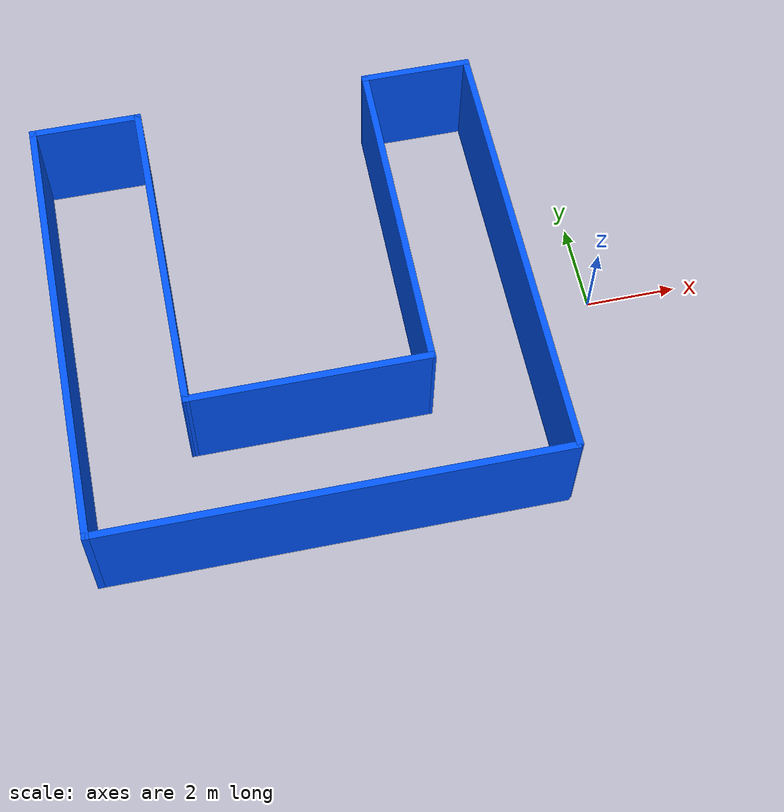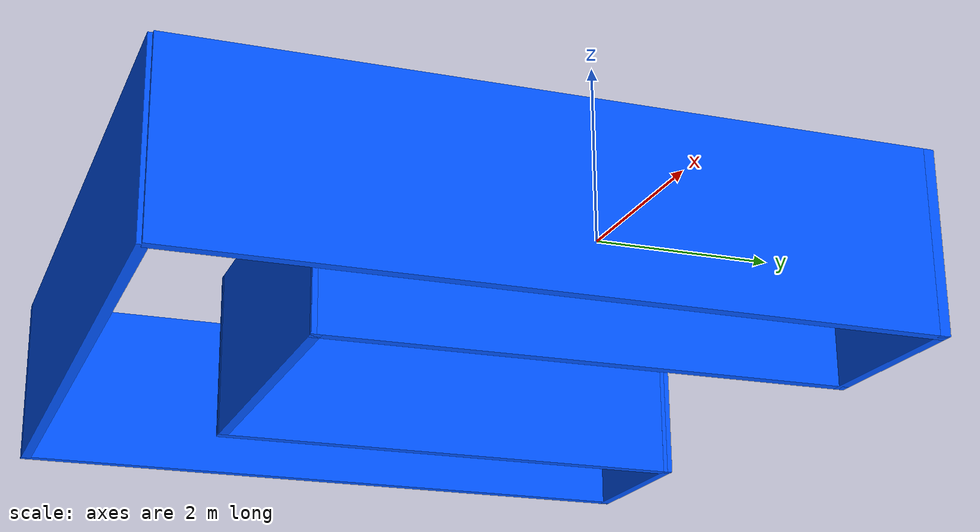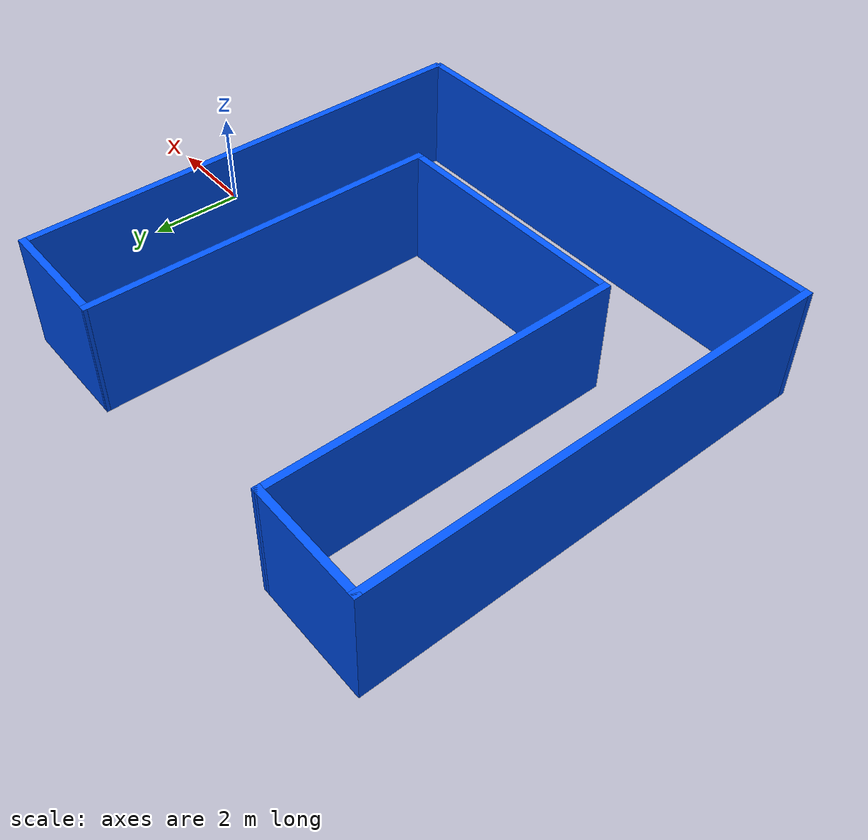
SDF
<?xml version='1.0'?>
<sdf version='1.6'>
  <model name='wall_world'>
    <pose frame=''>-6.63799 0.445283 0 0 -0 0</pose>
    <link name='Wall_0'>
      <collision name='Wall_0_Collision'>
        <geometry>
          <box>
            <size>10 0.15 2.5</size>
          </box>
        </geometry>
        <pose frame=''>0 0 1.25 0 -0 0</pose>
      </collision>
      <visual name='Wall_0_Visual'>
        <pose frame=''>0 0 1.25 0 -0 0</pose>
        <geometry>
          <box>
            <size>10 0.15 2.5</size>
          </box>
        </geometry>
        <material>
          <script>
            <uri>file://media/materials/scripts/gazebo.material</uri>
            <name>Gazebo/Grey</name>
          </script>
          <ambient>0 0.333333 1 1</ambient>
        </material>
        <meta>
          <layer>0</layer>
        </meta>
      </visual>
      <pose frame=''>-4.95201 -0.030283 0 0 -0 1.5708</pose>
    </link>
    <link name='Wall_10'>
      <collision name='Wall_10_Collision'>
        <geometry>
          <box>
            <size>7.47758 0.15 2.5</size>
          </box>
        </geometry>
        <pose frame=''>0 0 1.25 0 -0 0</pose>
      </collision>
      <visual name='Wall_10_Visual'>
        <pose frame=''>0 0 1.25 0 -0 0</pose>
        <geometry>
          <box>
            <size>7.47758 0.15 2.5</size>
          </box>
        </geometry>
        <material>
          <script>
            <uri>file://media/materials/scripts/gazebo.material</uri>
            <name>Gazebo/Grey</name>
          </script>
          <ambient>0 0.333333 1 1</ambient>
        </material>
        <meta>
          <layer>0</layer>
        </meta>
      </visual>
      <pose frame=''>2.55601 1.29085 0 0 -0 1.55824</pose>
    </link>
    <link name='Wall_11'>
      <collision name='Wall_11_Collision'>
        <geometry>
          <box>
            <size>2.5 0.15 2.5</size>
          </box>
        </geometry>
        <pose frame=''>0 0 1.25 0 -0 0</pose>
      </collision>
      <visual name='Wall_11_Visual'>
        <pose frame=''>0 0 1.25 0 -0 0</pose>
        <geometry>
          <box>
            <size>2.5 0.15 2.5</size>
          </box>
        </geometry>
        <material>
          <script>
            <uri>file://media/materials/scripts/gazebo.material</uri>
            <name>Gazebo/Grey</name>
          </script>
          <ambient>0 0.333333 1 1</ambient>
        </material>
        <meta>
          <layer>0</layer>
        </meta>
      </visual>
      <pose frame=''>3.77701 4.95435 0 0 -0 0</pose>
    </link>
    <link name='Wall_3'>
      <collision name='Wall_3_Collision'>
        <geometry>
          <box>
            <size>10 0.15 2.5</size>
          </box>
        </geometry>
        <pose frame=''>0 0 1.25 0 -0 0</pose>
      </collision>
      <visual name='Wall_3_Visual'>
        <pose frame=''>0 0 1.25 0 -0 0</pose>
        <geometry>
          <box>
            <size>10 0.15 2.5</size>
          </box>
        </geometry>
        <material>
          <script>
            <uri>file://media/materials/scripts/gazebo.material</uri>
            <name>Gazebo/Grey</name>
          </script>
          <ambient>0 0.333333 1 1</ambient>
        </material>
        <meta>
          <layer>0</layer>
        </meta>
      </visual>
      <pose frame=''>-0.02701 -4.95528 0 0 -0 3.14159</pose>
    </link>
    <link name='Wall_5'>
      <collision name='Wall_5_Collision'>
        <geometry>
          <box>
            <size>10 0.15 2.5</size>
          </box>
        </geometry>
        <pose frame=''>0 0 1.25 0 -0 0</pose>
      </collision>
      <visual name='Wall_5_Visual'>
        <pose frame=''>0 0 1.25 0 -0 0</pose>
        <geometry>
          <box>
            <size>10 0.15 2.5</size>
          </box>
        </geometry>
        <material>
          <script>
            <uri>file://media/materials/scripts/gazebo.material</uri>
            <name>Gazebo/Grey</name>
          </script>
          <ambient>0 0.333333 1 1</ambient>
        </material>
        <meta>
          <layer>0</layer>
        </meta>
      </visual>
      <pose frame=''>4.95201 0.029347 0 0 -0 1.5708</pose>
    </link>
    <link name='Wall_7'>
      <collision name='Wall_7_Collision'>
        <geometry>
          <box>
            <size>2.5 0.15 2.5</size>
          </box>
        </geometry>
        <pose frame=''>0 0 1.25 0 -0 0</pose>
      </collision>
      <visual name='Wall_7_Visual'>
        <pose frame=''>0 0 1.25 0 -0 0</pose>
        <geometry>
          <box>
            <size>2.5 0.15 2.5</size>
          </box>
        </geometry>
        <material>
          <script>
            <uri>file://media/materials/scripts/gazebo.material</uri>
            <name>Gazebo/Grey</name>
          </script>
          <ambient>0 0.333333 1 1</ambient>
        </material>
        <meta>
          <layer>0</layer>
        </meta>
      </visual>
      <pose frame=''>-3.77701 4.89472 0 0 -0 0</pose>
    </link>
    <link name='Wall_8'>
      <collision name='Wall_8_Collision'>
        <geometry>
          <box>
            <size>7.41738 0.15 2.5</size>
          </box>
        </geometry>
        <pose frame=''>0 0 1.25 0 -0 0</pose>
      </collision>
      <visual name='Wall_8_Visual'>
        <pose frame=''>0 0 1.25 0 -0 0</pose>
        <geometry>
          <box>
            <size>7.41738 0.15 2.5</size>
          </box>
        </geometry>
        <material>
          <script>
            <uri>file://media/materials/scripts/gazebo.material</uri>
            <name>Gazebo/Grey</name>
          </script>
          <ambient>0 0.333333 1 1</ambient>
        </material>
        <meta>
          <layer>0</layer>
        </meta>
      </visual>
      <pose frame=''>-2.6075 1.26103 0 0 0 -1.57231</pose>
    </link>
    <link name='Wall_9'>
      <collision name='Wall_9_Collision'>
        <geometry>
          <box>
            <size>5.25 0.15 2.5</size>
          </box>
        </geometry>
        <pose frame=''>0 0 1.25 0 -0 0</pose>
      </collision>
      <visual name='Wall_9_Visual'>
        <pose frame=''>0 0 1.25 0 -0 0</pose>
        <geometry>
          <box>
            <size>5.25 0.15 2.5</size>
          </box>
        </geometry>
        <material>
          <script>
            <uri>file://media/materials/scripts/gazebo.material</uri>
            <name>Gazebo/Grey</name>
          </script>
          <ambient>0 0.333333 1 1</ambient>
        </material>
        <meta>
          <layer>0</layer>
        </meta>
      </visual>
      <pose frame=''>-0.03999 -2.37265 0 0 -0 0</pose>
    </link>
    <static>1</static>
  </model>
</sdf>
